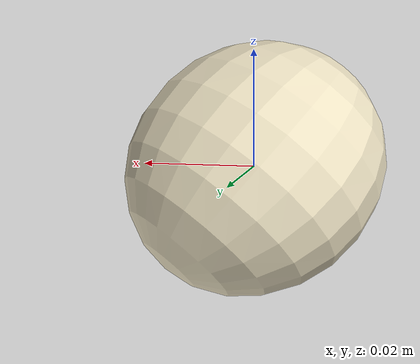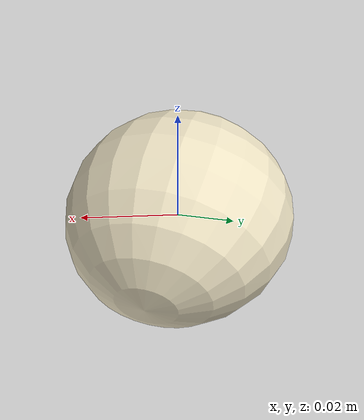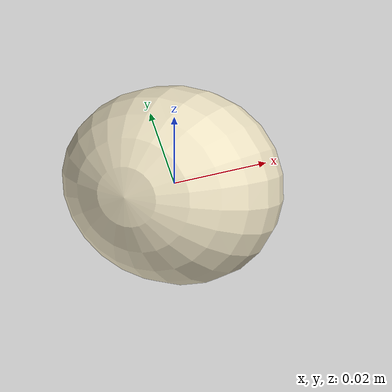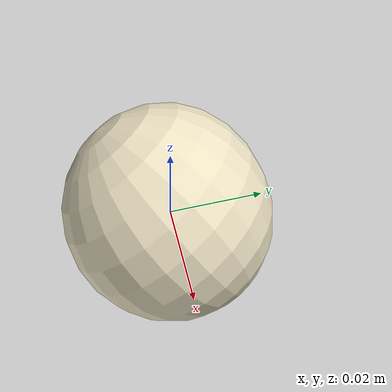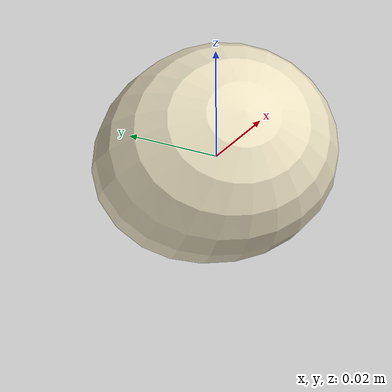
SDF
<?xml version="1.0"?>
<sdf version="1.7">
  <model name="cotton_pick_B_11">
    <static>false</static>
    <allow_auto_disable>false</allow_auto_disable>
    <link name="cotton_pick_B_11_link">
      <gravity>false</gravity>
      <self_collide>false</self_collide>
      <inertial>
        <mass>0.01200</mass>
        <inertia>
          <ixx>0.00000177</ixx>
          <iyy>0.00000177</iyy>
          <izz>0.00000177</izz>
          <ixy>0</ixy>
          <ixz>0</ixz>
          <iyz>0</iyz>
        </inertia>
      </inertial>
      <visual name="cotton_pick_B_11_visual">
        <geometry>
          <mesh>
            <uri>model://cotton_pick_B_11/meshes/cotton_pick_B_11.dae</uri>
          </mesh>
        </geometry>
      </visual>
      <collision name="cotton_pick_B_11_sphere_collision">
        <geometry>
          <sphere>
            <radius>0.01923</radius>
          </sphere>
        </geometry>
        <surface>
          <friction>
            <ode>
              <mu>1.6</mu>
              <mu2>1.6</mu2>
            </ode>
          </friction>
          <contact>
            <ode>
              <kp>8000</kp>
              <kd>80</kd>
            </ode>
          </contact>
        </surface>
      </collision>
    </link>
  </model>
</sdf>
